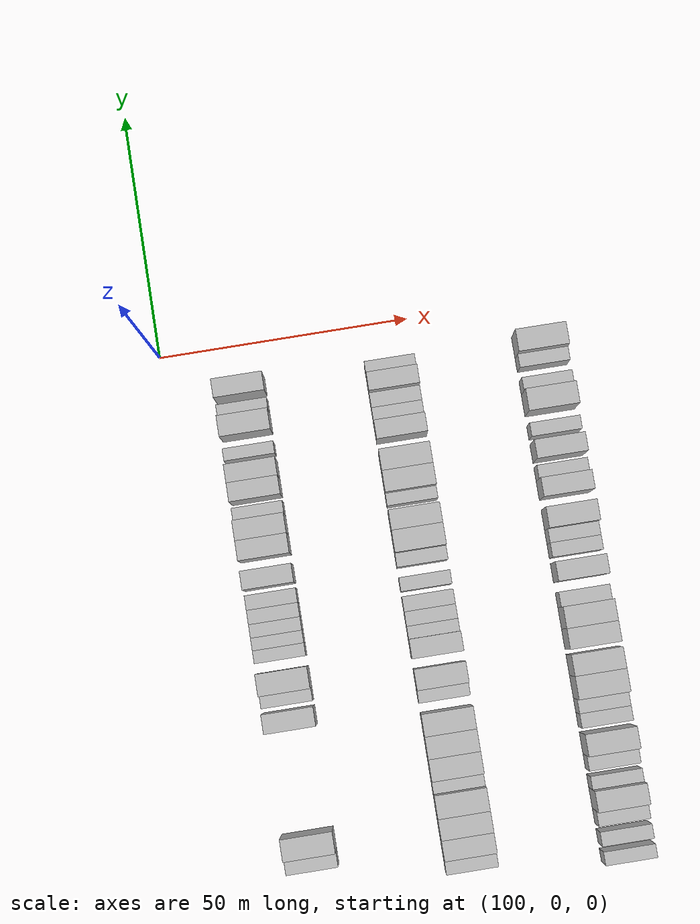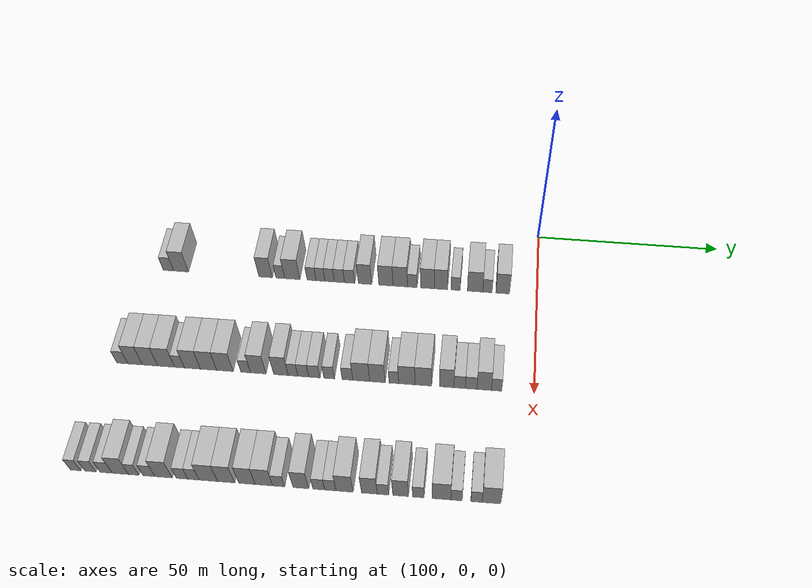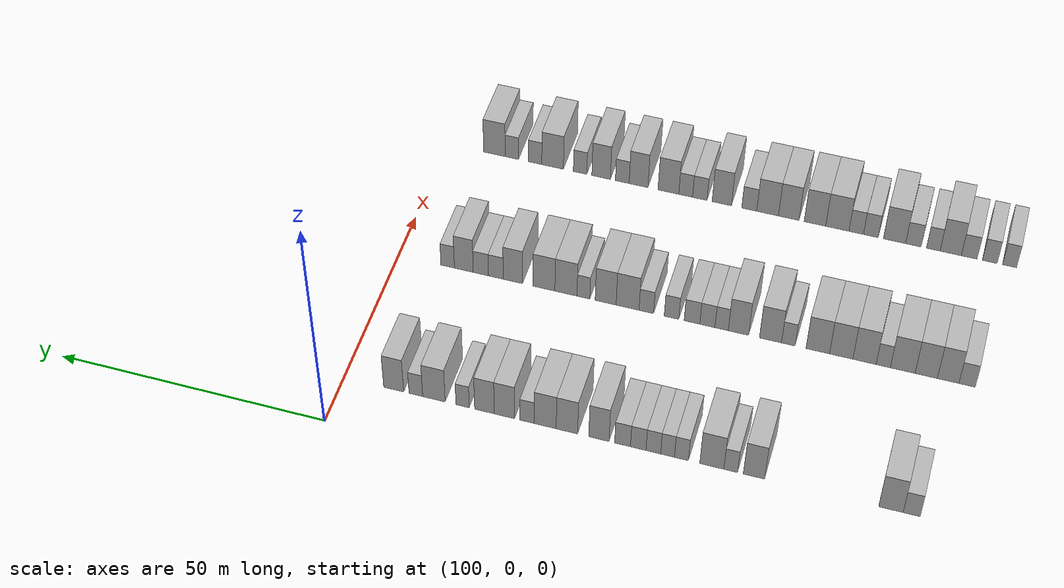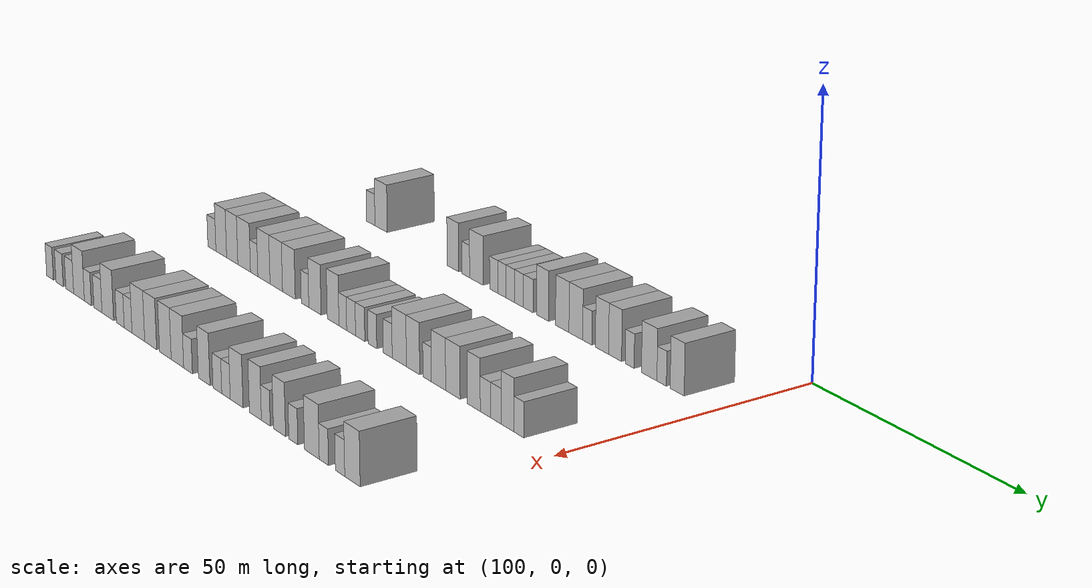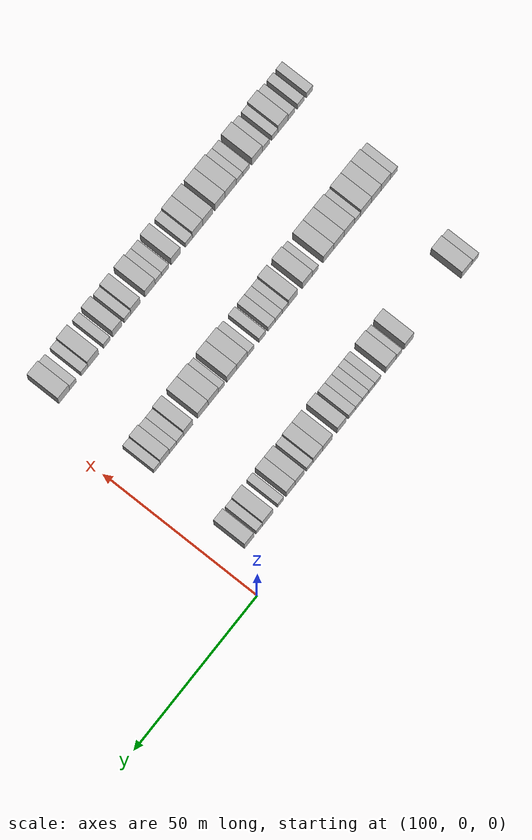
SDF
<sdf version="1.6">
 <world name="default">
  <model name="building_734">
   <static>1</static>
   <pose>115.0000 -101.7129 0 0.000000 0.000000 0.000000</pose>
   <link name="link">
    <pose>0 0 3.00 0 0 0</pose>
    <collision name="collision"><geometry><box><size>10.0000 2.8836 6.0000</size></box></geometry></collision>
    <visual name="visual">
     <cast_shadows>0</cast_shadows>
     <geometry><box><size>10.0000 2.8836 6.0000</size></box></geometry>
     <material>
      <script>
       <uri>model://HANNAS_wall/materials/scripts</uri>
       <uri>model://HANNAS_wall/materials/textures</uri>
       <name>vrc/HANNAS_wall</name>
      </script>
     </material>
    </visual>
   </link>
  </model>
  <model name="building_735">
   <static>1</static>
   <pose>115.0000 -98.1775 0 0.000000 0.000000 0.000000</pose>
   <link name="link">
    <pose>0 0 4.50 0 0 0</pose>
    <collision name="collision"><geometry><box><size>10.0000 4.1872 9.0000</size></box></geometry></collision>
    <visual name="visual">
     <cast_shadows>0</cast_shadows>
     <geometry><box><size>10.0000 4.1872 9.0000</size></box></geometry>
     <material>
      <script>
       <uri>model://HANNAS_wall/materials/scripts</uri>
       <uri>model://HANNAS_wall/materials/textures</uri>
       <name>vrc/HANNAS_wall</name>
      </script>
     </material>
    </visual>
   </link>
  </model>
  <model name="building_736">
   <static>1</static>
   <pose>115.0000 -74.4895 0 0.000000 0.000000 0.000000</pose>
   <link name="link">
    <pose>0 0 4.50 0 0 0</pose>
    <collision name="collision"><geometry><box><size>10.0000 3.7296 9.0000</size></box></geometry></collision>
    <visual name="visual">
     <cast_shadows>0</cast_shadows>
     <geometry><box><size>10.0000 3.7296 9.0000</size></box></geometry>
     <material>
      <script>
       <uri>model://HANNAS_wall/materials/scripts</uri>
       <uri>model://HANNAS_wall/materials/textures</uri>
       <name>vrc/HANNAS_wall</name>
      </script>
     </material>
    </visual>
   </link>
  </model>
  <model name="building_737">
   <static>1</static>
   <pose>115.0000 -70.4163 0 0.000000 0.000000 0.000000</pose>
   <link name="link">
    <pose>0 0 3.00 0 0 0</pose>
    <collision name="collision"><geometry><box><size>10.0000 2.4168 6.0000</size></box></geometry></collision>
    <visual name="visual">
     <cast_shadows>0</cast_shadows>
     <geometry><box><size>10.0000 2.4168 6.0000</size></box></geometry>
     <material>
      <script>
       <uri>model://HANNAS_wall/materials/scripts</uri>
       <uri>model://HANNAS_wall/materials/textures</uri>
       <name>vrc/HANNAS_wall</name>
      </script>
     </material>
    </visual>
   </link>
  </model>
  <model name="building_738">
   <static>1</static>
   <pose>115.0000 -67.0861 0 0.000000 0.000000 0.000000</pose>
   <link name="link">
    <pose>0 0 4.50 0 0 0</pose>
    <collision name="collision"><geometry><box><size>10.0000 4.2435 9.0000</size></box></geometry></collision>
    <visual name="visual">
     <cast_shadows>0</cast_shadows>
     <geometry><box><size>10.0000 4.2435 9.0000</size></box></geometry>
     <material>
      <script>
       <uri>model://HANNAS_wall/materials/scripts</uri>
       <uri>model://HANNAS_wall/materials/textures</uri>
       <name>vrc/HANNAS_wall</name>
      </script>
     </material>
    </visual>
   </link>
  </model>
  <model name="building_739">
   <static>1</static>
   <pose>115.0000 -61.7213 0 0.000000 0.000000 0.000000</pose>
   <link name="link">
    <pose>0 0 3.00 0 0 0</pose>
    <collision name="collision"><geometry><box><size>10.0000 2.4862 6.0000</size></box></geometry></collision>
    <visual name="visual">
     <cast_shadows>0</cast_shadows>
     <geometry><box><size>10.0000 2.4862 6.0000</size></box></geometry>
     <material>
      <script>
       <uri>model://HANNAS_wall/materials/scripts</uri>
       <uri>model://HANNAS_wall/materials/textures</uri>
       <name>vrc/HANNAS_wall</name>
      </script>
     </material>
    </visual>
   </link>
  </model>
  <model name="building_740">
   <static>1</static>
   <pose>115.0000 -59.2517 0 0.000000 0.000000 0.000000</pose>
   <link name="link">
    <pose>0 0 3.00 0 0 0</pose>
    <collision name="collision"><geometry><box><size>10.0000 2.4529 6.0000</size></box></geometry></collision>
    <visual name="visual">
     <cast_shadows>0</cast_shadows>
     <geometry><box><size>10.0000 2.4529 6.0000</size></box></geometry>
     <material>
      <script>
       <uri>model://HANNAS_wall/materials/scripts</uri>
       <uri>model://HANNAS_wall/materials/textures</uri>
       <name>vrc/HANNAS_wall</name>
      </script>
     </material>
    </visual>
   </link>
  </model>
  <model name="building_741">
   <static>1</static>
   <pose>115.0000 -56.7186 0 0.000000 0.000000 0.000000</pose>
   <link name="link">
    <pose>0 0 3.00 0 0 0</pose>
    <collision name="collision"><geometry><box><size>10.0000 2.6132 6.0000</size></box></geometry></collision>
    <visual name="visual">
     <cast_shadows>0</cast_shadows>
     <geometry><box><size>10.0000 2.6132 6.0000</size></box></geometry>
     <material>
      <script>
       <uri>model://HANNAS_wall/materials/scripts</uri>
       <uri>model://HANNAS_wall/materials/textures</uri>
       <name>vrc/HANNAS_wall</name>
      </script>
     </material>
    </visual>
   </link>
  </model>
  <model name="building_742">
   <static>1</static>
   <pose>115.0000 -54.0261 0 0.000000 0.000000 0.000000</pose>
   <link name="link">
    <pose>0 0 3.00 0 0 0</pose>
    <collision name="collision"><geometry><box><size>10.0000 2.7718 6.0000</size></box></geometry></collision>
    <visual name="visual">
     <cast_shadows>0</cast_shadows>
     <geometry><box><size>10.0000 2.7718 6.0000</size></box></geometry>
     <material>
      <script>
       <uri>model://HANNAS_wall/materials/scripts</uri>
       <uri>model://HANNAS_wall/materials/textures</uri>
       <name>vrc/HANNAS_wall</name>
      </script>
     </material>
    </visual>
   </link>
  </model>
  <model name="building_743">
   <static>1</static>
   <pose>115.0000 -51.2194 0 0.000000 0.000000 0.000000</pose>
   <link name="link">
    <pose>0 0 3.00 0 0 0</pose>
    <collision name="collision"><geometry><box><size>10.0000 2.8417 6.0000</size></box></geometry></collision>
    <visual name="visual">
     <cast_shadows>0</cast_shadows>
     <geometry><box><size>10.0000 2.8417 6.0000</size></box></geometry>
     <material>
      <script>
       <uri>model://HANNAS_wall/materials/scripts</uri>
       <uri>model://HANNAS_wall/materials/textures</uri>
       <name>vrc/HANNAS_wall</name>
      </script>
     </material>
    </visual>
   </link>
  </model>
  <model name="building_744">
   <static>1</static>
   <pose>115.0000 -46.9704 0 0.000000 0.000000 0.000000</pose>
   <link name="link">
    <pose>0 0 4.50 0 0 0</pose>
    <collision name="collision"><geometry><box><size>10.0000 3.6562 9.0000</size></box></geometry></collision>
    <visual name="visual">
     <cast_shadows>0</cast_shadows>
     <geometry><box><size>10.0000 3.6562 9.0000</size></box></geometry>
     <material>
      <script>
       <uri>model://HANNAS_wall/materials/scripts</uri>
       <uri>model://HANNAS_wall/materials/textures</uri>
       <name>vrc/HANNAS_wall</name>
      </script>
     </material>
    </visual>
   </link>
  </model>
  <model name="building_745">
   <static>1</static>
   <pose>115.0000 -41.1930 0 0.000000 0.000000 0.000000</pose>
   <link name="link">
    <pose>0 0 4.50 0 0 0</pose>
    <collision name="collision"><geometry><box><size>10.0000 3.8987 9.0000</size></box></geometry></collision>
    <visual name="visual">
     <cast_shadows>0</cast_shadows>
     <geometry><box><size>10.0000 3.8987 9.0000</size></box></geometry>
     <material>
      <script>
       <uri>model://HANNAS_wall/materials/scripts</uri>
       <uri>model://HANNAS_wall/materials/textures</uri>
       <name>vrc/HANNAS_wall</name>
      </script>
     </material>
    </visual>
   </link>
  </model>
  <model name="building_746">
   <static>1</static>
   <pose>115.0000 -37.2574 0 0.000000 0.000000 0.000000</pose>
   <link name="link">
    <pose>0 0 4.50 0 0 0</pose>
    <collision name="collision"><geometry><box><size>10.0000 3.9725 9.0000</size></box></geometry></collision>
    <visual name="visual">
     <cast_shadows>0</cast_shadows>
     <geometry><box><size>10.0000 3.9725 9.0000</size></box></geometry>
     <material>
      <script>
       <uri>model://HANNAS_wall/materials/scripts</uri>
       <uri>model://HANNAS_wall/materials/textures</uri>
       <name>vrc/HANNAS_wall</name>
      </script>
     </material>
    </visual>
   </link>
  </model>
  <model name="building_747">
   <static>1</static>
   <pose>115.0000 -33.9698 0 0.000000 0.000000 0.000000</pose>
   <link name="link">
    <pose>0 0 3.00 0 0 0</pose>
    <collision name="collision"><geometry><box><size>10.0000 2.6027 6.0000</size></box></geometry></collision>
    <visual name="visual">
     <cast_shadows>0</cast_shadows>
     <geometry><box><size>10.0000 2.6027 6.0000</size></box></geometry>
     <material>
      <script>
       <uri>model://HANNAS_wall/materials/scripts</uri>
       <uri>model://HANNAS_wall/materials/textures</uri>
       <name>vrc/HANNAS_wall</name>
      </script>
     </material>
    </visual>
   </link>
  </model>
  <model name="building_748">
   <static>1</static>
   <pose>115.0000 -29.8091 0 0.000000 0.000000 0.000000</pose>
   <link name="link">
    <pose>0 0 4.50 0 0 0</pose>
    <collision name="collision"><geometry><box><size>10.0000 3.7188 9.0000</size></box></geometry></collision>
    <visual name="visual">
     <cast_shadows>0</cast_shadows>
     <geometry><box><size>10.0000 3.7188 9.0000</size></box></geometry>
     <material>
      <script>
       <uri>model://HANNAS_wall/materials/scripts</uri>
       <uri>model://HANNAS_wall/materials/textures</uri>
       <name>vrc/HANNAS_wall</name>
      </script>
     </material>
    </visual>
   </link>
  </model>
  <model name="building_749">
   <static>1</static>
   <pose>115.0000 -26.1480 0 0.000000 0.000000 0.000000</pose>
   <link name="link">
    <pose>0 0 4.50 0 0 0</pose>
    <collision name="collision"><geometry><box><size>10.0000 3.6032 9.0000</size></box></geometry></collision>
    <visual name="visual">
     <cast_shadows>0</cast_shadows>
     <geometry><box><size>10.0000 3.6032 9.0000</size></box></geometry>
     <material>
      <script>
       <uri>model://HANNAS_wall/materials/scripts</uri>
       <uri>model://HANNAS_wall/materials/textures</uri>
       <name>vrc/HANNAS_wall</name>
      </script>
     </material>
    </visual>
   </link>
  </model>
  <model name="building_750">
   <static>1</static>
   <pose>115.0000 -22.1203 0 0.000000 0.000000 0.000000</pose>
   <link name="link">
    <pose>0 0 3.00 0 0 0</pose>
    <collision name="collision"><geometry><box><size>10.0000 2.4522 6.0000</size></box></geometry></collision>
    <visual name="visual">
     <cast_shadows>0</cast_shadows>
     <geometry><box><size>10.0000 2.4522 6.0000</size></box></geometry>
     <material>
      <script>
       <uri>model://HANNAS_wall/materials/scripts</uri>
       <uri>model://HANNAS_wall/materials/textures</uri>
       <name>vrc/HANNAS_wall</name>
      </script>
     </material>
    </visual>
   </link>
  </model>
  <model name="building_751">
   <static>1</static>
   <pose>115.0000 -16.8085 0 0.000000 0.000000 0.000000</pose>
   <link name="link">
    <pose>0 0 4.50 0 0 0</pose>
    <collision name="collision"><geometry><box><size>10.0000 4.1714 9.0000</size></box></geometry></collision>
    <visual name="visual">
     <cast_shadows>0</cast_shadows>
     <geometry><box><size>10.0000 4.1714 9.0000</size></box></geometry>
     <material>
      <script>
       <uri>model://HANNAS_wall/materials/scripts</uri>
       <uri>model://HANNAS_wall/materials/textures</uri>
       <name>vrc/HANNAS_wall</name>
      </script>
     </material>
    </visual>
   </link>
  </model>
  <model name="building_752">
   <static>1</static>
   <pose>115.0000 -13.4488 0 0.000000 0.000000 0.000000</pose>
   <link name="link">
    <pose>0 0 3.00 0 0 0</pose>
    <collision name="collision"><geometry><box><size>10.0000 2.5480 6.0000</size></box></geometry></collision>
    <visual name="visual">
     <cast_shadows>0</cast_shadows>
     <geometry><box><size>10.0000 2.5480 6.0000</size></box></geometry>
     <material>
      <script>
       <uri>model://HANNAS_wall/materials/scripts</uri>
       <uri>model://HANNAS_wall/materials/textures</uri>
       <name>vrc/HANNAS_wall</name>
      </script>
     </material>
    </visual>
   </link>
  </model>
  <model name="building_753">
   <static>1</static>
   <pose>115.0000 -9.3132 0 0.000000 0.000000 0.000000</pose>
   <link name="link">
    <pose>0 0 4.50 0 0 0</pose>
    <collision name="collision"><geometry><box><size>10.0000 3.7233 9.0000</size></box></geometry></collision>
    <visual name="visual">
     <cast_shadows>0</cast_shadows>
     <geometry><box><size>10.0000 3.7233 9.0000</size></box></geometry>
     <material>
      <script>
       <uri>model://HANNAS_wall/materials/scripts</uri>
       <uri>model://HANNAS_wall/materials/textures</uri>
       <name>vrc/HANNAS_wall</name>
      </script>
     </material>
    </visual>
   </link>
  </model>
  <model name="building_943">
   <static>1</static>
   <pose>145.0000 -106.3964 0 0.000000 0.000000 0.000000</pose>
   <link name="link">
    <pose>0 0 3.00 0 0 0</pose>
    <collision name="collision"><geometry><box><size>10.0000 2.9068 6.0000</size></box></geometry></collision>
    <visual name="visual">
     <cast_shadows>0</cast_shadows>
     <geometry><box><size>10.0000 2.9068 6.0000</size></box></geometry>
     <material>
      <script>
       <uri>model://HANNAS_wall/materials/scripts</uri>
       <uri>model://HANNAS_wall/materials/textures</uri>
       <name>vrc/HANNAS_wall</name>
      </script>
     </material>
    </visual>
   </link>
  </model>
  <model name="building_944">
   <static>1</static>
   <pose>145.0000 -103.0213 0 0.000000 0.000000 0.000000</pose>
   <link name="link">
    <pose>0 0 4.50 0 0 0</pose>
    <collision name="collision"><geometry><box><size>10.0000 3.8434 9.0000</size></box></geometry></collision>
    <visual name="visual">
     <cast_shadows>0</cast_shadows>
     <geometry><box><size>10.0000 3.8434 9.0000</size></box></geometry>
     <material>
      <script>
       <uri>model://HANNAS_wall/materials/scripts</uri>
       <uri>model://HANNAS_wall/materials/textures</uri>
       <name>vrc/HANNAS_wall</name>
      </script>
     </material>
    </visual>
   </link>
  </model>
  <model name="building_945">
   <static>1</static>
   <pose>145.0000 -99.0991 0 0.000000 0.000000 0.000000</pose>
   <link name="link">
    <pose>0 0 4.50 0 0 0</pose>
    <collision name="collision"><geometry><box><size>10.0000 4.0010 9.0000</size></box></geometry></collision>
    <visual name="visual">
     <cast_shadows>0</cast_shadows>
     <geometry><box><size>10.0000 4.0010 9.0000</size></box></geometry>
     <material>
      <script>
       <uri>model://HANNAS_wall/materials/scripts</uri>
       <uri>model://HANNAS_wall/materials/textures</uri>
       <name>vrc/HANNAS_wall</name>
      </script>
     </material>
    </visual>
   </link>
  </model>
  <model name="building_946">
   <static>1</static>
   <pose>145.0000 -94.8778 0 0.000000 0.000000 0.000000</pose>
   <link name="link">
    <pose>0 0 4.50 0 0 0</pose>
    <collision name="collision"><geometry><box><size>10.0000 4.4416 9.0000</size></box></geometry></collision>
    <visual name="visual">
     <cast_shadows>0</cast_shadows>
     <geometry><box><size>10.0000 4.4416 9.0000</size></box></geometry>
     <material>
      <script>
       <uri>model://HANNAS_wall/materials/scripts</uri>
       <uri>model://HANNAS_wall/materials/textures</uri>
       <name>vrc/HANNAS_wall</name>
      </script>
     </material>
    </visual>
   </link>
  </model>
  <model name="building_947">
   <static>1</static>
   <pose>145.0000 -91.3751 0 0.000000 0.000000 0.000000</pose>
   <link name="link">
    <pose>0 0 3.00 0 0 0</pose>
    <collision name="collision"><geometry><box><size>10.0000 2.5639 6.0000</size></box></geometry></collision>
    <visual name="visual">
     <cast_shadows>0</cast_shadows>
     <geometry><box><size>10.0000 2.5639 6.0000</size></box></geometry>
     <material>
      <script>
       <uri>model://HANNAS_wall/materials/scripts</uri>
       <uri>model://HANNAS_wall/materials/textures</uri>
       <name>vrc/HANNAS_wall</name>
      </script>
     </material>
    </visual>
   </link>
  </model>
  <model name="building_948">
   <static>1</static>
   <pose>145.0000 -87.9874 0 0.000000 0.000000 0.000000</pose>
   <link name="link">
    <pose>0 0 4.50 0 0 0</pose>
    <collision name="collision"><geometry><box><size>10.0000 4.2115 9.0000</size></box></geometry></collision>
    <visual name="visual">
     <cast_shadows>0</cast_shadows>
     <geometry><box><size>10.0000 4.2115 9.0000</size></box></geometry>
     <material>
      <script>
       <uri>model://HANNAS_wall/materials/scripts</uri>
       <uri>model://HANNAS_wall/materials/textures</uri>
       <name>vrc/HANNAS_wall</name>
      </script>
     </material>
    </visual>
   </link>
  </model>
  <model name="building_949">
   <static>1</static>
   <pose>145.0000 -83.7532 0 0.000000 0.000000 0.000000</pose>
   <link name="link">
    <pose>0 0 4.50 0 0 0</pose>
    <collision name="collision"><geometry><box><size>10.0000 4.2570 9.0000</size></box></geometry></collision>
    <visual name="visual">
     <cast_shadows>0</cast_shadows>
     <geometry><box><size>10.0000 4.2570 9.0000</size></box></geometry>
     <material>
      <script>
       <uri>model://HANNAS_wall/materials/scripts</uri>
       <uri>model://HANNAS_wall/materials/textures</uri>
       <name>vrc/HANNAS_wall</name>
      </script>
     </material>
    </visual>
   </link>
  </model>
  <model name="building_950">
   <static>1</static>
   <pose>145.0000 -79.4793 0 0.000000 0.000000 0.000000</pose>
   <link name="link">
    <pose>0 0 4.50 0 0 0</pose>
    <collision name="collision"><geometry><box><size>10.0000 4.2907 9.0000</size></box></geometry></collision>
    <visual name="visual">
     <cast_shadows>0</cast_shadows>
     <geometry><box><size>10.0000 4.2907 9.0000</size></box></geometry>
     <material>
      <script>
       <uri>model://HANNAS_wall/materials/scripts</uri>
       <uri>model://HANNAS_wall/materials/textures</uri>
       <name>vrc/HANNAS_wall</name>
      </script>
     </material>
    </visual>
   </link>
  </model>
  <model name="building_951">
   <static>1</static>
   <pose>145.0000 -74.0862 0 0.000000 0.000000 0.000000</pose>
   <link name="link">
    <pose>0 0 3.00 0 0 0</pose>
    <collision name="collision"><geometry><box><size>10.0000 2.4956 6.0000</size></box></geometry></collision>
    <visual name="visual">
     <cast_shadows>0</cast_shadows>
     <geometry><box><size>10.0000 2.4956 6.0000</size></box></geometry>
     <material>
      <script>
       <uri>model://HANNAS_wall/materials/scripts</uri>
       <uri>model://HANNAS_wall/materials/textures</uri>
       <name>vrc/HANNAS_wall</name>
      </script>
     </material>
    </visual>
   </link>
  </model>
  <model name="building_952">
   <static>1</static>
   <pose>145.0000 -70.8057 0 0.000000 0.000000 0.000000</pose>
   <link name="link">
    <pose>0 0 4.50 0 0 0</pose>
    <collision name="collision"><geometry><box><size>10.0000 4.0654 9.0000</size></box></geometry></collision>
    <visual name="visual">
     <cast_shadows>0</cast_shadows>
     <geometry><box><size>10.0000 4.0654 9.0000</size></box></geometry>
     <material>
      <script>
       <uri>model://HANNAS_wall/materials/scripts</uri>
       <uri>model://HANNAS_wall/materials/textures</uri>
       <name>vrc/HANNAS_wall</name>
      </script>
     </material>
    </visual>
   </link>
  </model>
  <model name="building_953">
   <static>1</static>
   <pose>145.0000 -64.8870 0 0.000000 0.000000 0.000000</pose>
   <link name="link">
    <pose>0 0 4.50 0 0 0</pose>
    <collision name="collision"><geometry><box><size>10.0000 3.7720 9.0000</size></box></geometry></collision>
    <visual name="visual">
     <cast_shadows>0</cast_shadows>
     <geometry><box><size>10.0000 3.7720 9.0000</size></box></geometry>
     <material>
      <script>
       <uri>model://HANNAS_wall/materials/scripts</uri>
       <uri>model://HANNAS_wall/materials/textures</uri>
       <name>vrc/HANNAS_wall</name>
      </script>
     </material>
    </visual>
   </link>
  </model>
  <model name="building_954">
   <static>1</static>
   <pose>145.0000 -61.7657 0 0.000000 0.000000 0.000000</pose>
   <link name="link">
    <pose>0 0 3.00 0 0 0</pose>
    <collision name="collision"><geometry><box><size>10.0000 2.4706 6.0000</size></box></geometry></collision>
    <visual name="visual">
     <cast_shadows>0</cast_shadows>
     <geometry><box><size>10.0000 2.4706 6.0000</size></box></geometry>
     <material>
      <script>
       <uri>model://HANNAS_wall/materials/scripts</uri>
       <uri>model://HANNAS_wall/materials/textures</uri>
       <name>vrc/HANNAS_wall</name>
      </script>
     </material>
    </visual>
   </link>
  </model>
  <model name="building_955">
   <static>1</static>
   <pose>145.0000 -59.1173 0 0.000000 0.000000 0.000000</pose>
   <link name="link">
    <pose>0 0 3.00 0 0 0</pose>
    <collision name="collision"><geometry><box><size>10.0000 2.8263 6.0000</size></box></geometry></collision>
    <visual name="visual">
     <cast_shadows>0</cast_shadows>
     <geometry><box><size>10.0000 2.8263 6.0000</size></box></geometry>
     <material>
      <script>
       <uri>model://HANNAS_wall/materials/scripts</uri>
       <uri>model://HANNAS_wall/materials/textures</uri>
       <name>vrc/HANNAS_wall</name>
      </script>
     </material>
    </visual>
   </link>
  </model>
  <model name="building_956">
   <static>1</static>
   <pose>145.0000 -56.2419 0 0.000000 0.000000 0.000000</pose>
   <link name="link">
    <pose>0 0 3.00 0 0 0</pose>
    <collision name="collision"><geometry><box><size>10.0000 2.9244 6.0000</size></box></geometry></collision>
    <visual name="visual">
     <cast_shadows>0</cast_shadows>
     <geometry><box><size>10.0000 2.9244 6.0000</size></box></geometry>
     <material>
      <script>
       <uri>model://HANNAS_wall/materials/scripts</uri>
       <uri>model://HANNAS_wall/materials/textures</uri>
       <name>vrc/HANNAS_wall</name>
      </script>
     </material>
    </visual>
   </link>
  </model>
  <model name="building_957">
   <static>1</static>
   <pose>145.0000 -52.4153 0 0.000000 0.000000 0.000000</pose>
   <link name="link">
    <pose>0 0 3.00 0 0 0</pose>
    <collision name="collision"><geometry><box><size>10.0000 2.7288 6.0000</size></box></geometry></collision>
    <visual name="visual">
     <cast_shadows>0</cast_shadows>
     <geometry><box><size>10.0000 2.7288 6.0000</size></box></geometry>
     <material>
      <script>
       <uri>model://HANNAS_wall/materials/scripts</uri>
       <uri>model://HANNAS_wall/materials/textures</uri>
       <name>vrc/HANNAS_wall</name>
      </script>
     </material>
    </visual>
   </link>
  </model>
  <model name="building_958">
   <static>1</static>
   <pose>145.0000 -47.6742 0 0.000000 0.000000 0.000000</pose>
   <link name="link">
    <pose>0 0 3.00 0 0 0</pose>
    <collision name="collision"><geometry><box><size>10.0000 2.7535 6.0000</size></box></geometry></collision>
    <visual name="visual">
     <cast_shadows>0</cast_shadows>
     <geometry><box><size>10.0000 2.7535 6.0000</size></box></geometry>
     <material>
      <script>
       <uri>model://HANNAS_wall/materials/scripts</uri>
       <uri>model://HANNAS_wall/materials/textures</uri>
       <name>vrc/HANNAS_wall</name>
      </script>
     </material>
    </visual>
   </link>
  </model>
  <model name="building_959">
   <static>1</static>
   <pose>145.0000 -44.1345 0 0.000000 0.000000 0.000000</pose>
   <link name="link">
    <pose>0 0 4.50 0 0 0</pose>
    <collision name="collision"><geometry><box><size>10.0000 4.3260 9.0000</size></box></geometry></collision>
    <visual name="visual">
     <cast_shadows>0</cast_shadows>
     <geometry><box><size>10.0000 4.3260 9.0000</size></box></geometry>
     <material>
      <script>
       <uri>model://HANNAS_wall/materials/scripts</uri>
       <uri>model://HANNAS_wall/materials/textures</uri>
       <name>vrc/HANNAS_wall</name>
      </script>
     </material>
    </visual>
   </link>
  </model>
  <model name="building_960">
   <static>1</static>
   <pose>145.0000 -39.9792 0 0.000000 0.000000 0.000000</pose>
   <link name="link">
    <pose>0 0 4.50 0 0 0</pose>
    <collision name="collision"><geometry><box><size>10.0000 3.9847 9.0000</size></box></geometry></collision>
    <visual name="visual">
     <cast_shadows>0</cast_shadows>
     <geometry><box><size>10.0000 3.9847 9.0000</size></box></geometry>
     <material>
      <script>
       <uri>model://HANNAS_wall/materials/scripts</uri>
       <uri>model://HANNAS_wall/materials/textures</uri>
       <name>vrc/HANNAS_wall</name>
      </script>
     </material>
    </visual>
   </link>
  </model>
  <model name="building_961">
   <static>1</static>
   <pose>145.0000 -35.7573 0 0.000000 0.000000 0.000000</pose>
   <link name="link">
    <pose>0 0 3.00 0 0 0</pose>
    <collision name="collision"><geometry><box><size>10.0000 2.4591 6.0000</size></box></geometry></collision>
    <visual name="visual">
     <cast_shadows>0</cast_shadows>
     <geometry><box><size>10.0000 2.4591 6.0000</size></box></geometry>
     <material>
      <script>
       <uri>model://HANNAS_wall/materials/scripts</uri>
       <uri>model://HANNAS_wall/materials/textures</uri>
       <name>vrc/HANNAS_wall</name>
      </script>
     </material>
    </visual>
   </link>
  </model>
  <model name="building_962">
   <static>1</static>
   <pose>145.0000 -32.4200 0 0.000000 0.000000 0.000000</pose>
   <link name="link">
    <pose>0 0 4.50 0 0 0</pose>
    <collision name="collision"><geometry><box><size>10.0000 4.2155 9.0000</size></box></geometry></collision>
    <visual name="visual">
     <cast_shadows>0</cast_shadows>
     <geometry><box><size>10.0000 4.2155 9.0000</size></box></geometry>
     <material>
      <script>
       <uri>model://HANNAS_wall/materials/scripts</uri>
       <uri>model://HANNAS_wall/materials/textures</uri>
       <name>vrc/HANNAS_wall</name>
      </script>
     </material>
    </visual>
   </link>
  </model>
  <model name="building_963">
   <static>1</static>
   <pose>145.0000 -28.2060 0 0.000000 0.000000 0.000000</pose>
   <link name="link">
    <pose>0 0 4.50 0 0 0</pose>
    <collision name="collision"><geometry><box><size>10.0000 4.2125 9.0000</size></box></geometry></collision>
    <visual name="visual">
     <cast_shadows>0</cast_shadows>
     <geometry><box><size>10.0000 4.2125 9.0000</size></box></geometry>
     <material>
      <script>
       <uri>model://HANNAS_wall/materials/scripts</uri>
       <uri>model://HANNAS_wall/materials/textures</uri>
       <name>vrc/HANNAS_wall</name>
      </script>
     </material>
    </visual>
   </link>
  </model>
  <model name="building_964">
   <static>1</static>
   <pose>145.0000 -22.2326 0 0.000000 0.000000 0.000000</pose>
   <link name="link">
    <pose>0 0 4.50 0 0 0</pose>
    <collision name="collision"><geometry><box><size>10.0000 3.7343 9.0000</size></box></geometry></collision>
    <visual name="visual">
     <cast_shadows>0</cast_shadows>
     <geometry><box><size>10.0000 3.7343 9.0000</size></box></geometry>
     <material>
      <script>
       <uri>model://HANNAS_wall/materials/scripts</uri>
       <uri>model://HANNAS_wall/materials/textures</uri>
       <name>vrc/HANNAS_wall</name>
      </script>
     </material>
    </visual>
   </link>
  </model>
  <model name="building_965">
   <static>1</static>
   <pose>145.0000 -18.9314 0 0.000000 0.000000 0.000000</pose>
   <link name="link">
    <pose>0 0 3.00 0 0 0</pose>
    <collision name="collision"><geometry><box><size>10.0000 2.8681 6.0000</size></box></geometry></collision>
    <visual name="visual">
     <cast_shadows>0</cast_shadows>
     <geometry><box><size>10.0000 2.8681 6.0000</size></box></geometry>
     <material>
      <script>
       <uri>model://HANNAS_wall/materials/scripts</uri>
       <uri>model://HANNAS_wall/materials/textures</uri>
       <name>vrc/HANNAS_wall</name>
      </script>
     </material>
    </visual>
   </link>
  </model>
  <model name="building_966">
   <static>1</static>
   <pose>145.0000 -16.0173 0 0.000000 0.000000 0.000000</pose>
   <link name="link">
    <pose>0 0 3.00 0 0 0</pose>
    <collision name="collision"><geometry><box><size>10.0000 2.9600 6.0000</size></box></geometry></collision>
    <visual name="visual">
     <cast_shadows>0</cast_shadows>
     <geometry><box><size>10.0000 2.9600 6.0000</size></box></geometry>
     <material>
      <script>
       <uri>model://HANNAS_wall/materials/scripts</uri>
       <uri>model://HANNAS_wall/materials/textures</uri>
       <name>vrc/HANNAS_wall</name>
      </script>
     </material>
    </visual>
   </link>
  </model>
  <model name="building_967">
   <static>1</static>
   <pose>145.0000 -12.7052 0 0.000000 0.000000 0.000000</pose>
   <link name="link">
    <pose>0 0 4.50 0 0 0</pose>
    <collision name="collision"><geometry><box><size>10.0000 3.6642 9.0000</size></box></geometry></collision>
    <visual name="visual">
     <cast_shadows>0</cast_shadows>
     <geometry><box><size>10.0000 3.6642 9.0000</size></box></geometry>
     <material>
      <script>
       <uri>model://HANNAS_wall/materials/scripts</uri>
       <uri>model://HANNAS_wall/materials/textures</uri>
       <name>vrc/HANNAS_wall</name>
      </script>
     </material>
    </visual>
   </link>
  </model>
  <model name="building_968">
   <static>1</static>
   <pose>145.0000 -9.5540 0 0.000000 0.000000 0.000000</pose>
   <link name="link">
    <pose>0 0 3.00 0 0 0</pose>
    <collision name="collision"><geometry><box><size>10.0000 2.6382 6.0000</size></box></geometry></collision>
    <visual name="visual">
     <cast_shadows>0</cast_shadows>
     <geometry><box><size>10.0000 2.6382 6.0000</size></box></geometry>
     <material>
      <script>
       <uri>model://HANNAS_wall/materials/scripts</uri>
       <uri>model://HANNAS_wall/materials/textures</uri>
       <name>vrc/HANNAS_wall</name>
      </script>
     </material>
    </visual>
   </link>
  </model>
  <model name="building_1167">
   <static>1</static>
   <pose>175.0000 -109.6147 0 0.000000 0.000000 0.000000</pose>
   <link name="link">
    <pose>0 0 3.00 0 0 0</pose>
    <collision name="collision"><geometry><box><size>10.0000 2.5950 6.0000</size></box></geometry></collision>
    <visual name="visual">
     <cast_shadows>0</cast_shadows>
     <geometry><box><size>10.0000 2.5950 6.0000</size></box></geometry>
     <material>
      <script>
       <uri>model://HANNAS_wall/materials/scripts</uri>
       <uri>model://HANNAS_wall/materials/textures</uri>
       <name>vrc/HANNAS_wall</name>
      </script>
     </material>
    </visual>
   </link>
  </model>
  <model name="building_1168">
   <static>1</static>
   <pose>175.0000 -105.9452 0 0.000000 0.000000 0.000000</pose>
   <link name="link">
    <pose>0 0 3.00 0 0 0</pose>
    <collision name="collision"><geometry><box><size>10.0000 2.7439 6.0000</size></box></geometry></collision>
    <visual name="visual">
     <cast_shadows>0</cast_shadows>
     <geometry><box><size>10.0000 2.7439 6.0000</size></box></geometry>
     <material>
      <script>
       <uri>model://HANNAS_wall/materials/scripts</uri>
       <uri>model://HANNAS_wall/materials/textures</uri>
       <name>vrc/HANNAS_wall</name>
      </script>
     </material>
    </visual>
   </link>
  </model>
  <model name="building_1169">
   <static>1</static>
   <pose>175.0000 -102.0971 0 0.000000 0.000000 0.000000</pose>
   <link name="link">
    <pose>0 0 3.00 0 0 0</pose>
    <collision name="collision"><geometry><box><size>10.0000 2.9522 6.0000</size></box></geometry></collision>
    <visual name="visual">
     <cast_shadows>0</cast_shadows>
     <geometry><box><size>10.0000 2.9522 6.0000</size></box></geometry>
     <material>
      <script>
       <uri>model://HANNAS_wall/materials/scripts</uri>
       <uri>model://HANNAS_wall/materials/textures</uri>
       <name>vrc/HANNAS_wall</name>
      </script>
     </material>
    </visual>
   </link>
  </model>
  <model name="building_1170">
   <static>1</static>
   <pose>175.0000 -98.6172 0 0.000000 0.000000 0.000000</pose>
   <link name="link">
    <pose>0 0 4.50 0 0 0</pose>
    <collision name="collision"><geometry><box><size>10.0000 4.0077 9.0000</size></box></geometry></collision>
    <visual name="visual">
     <cast_shadows>0</cast_shadows>
     <geometry><box><size>10.0000 4.0077 9.0000</size></box></geometry>
     <material>
      <script>
       <uri>model://HANNAS_wall/materials/scripts</uri>
       <uri>model://HANNAS_wall/materials/textures</uri>
       <name>vrc/HANNAS_wall</name>
      </script>
     </material>
    </visual>
   </link>
  </model>
  <model name="building_1171">
   <static>1</static>
   <pose>175.0000 -95.3393 0 0.000000 0.000000 0.000000</pose>
   <link name="link">
    <pose>0 0 3.00 0 0 0</pose>
    <collision name="collision"><geometry><box><size>10.0000 2.5482 6.0000</size></box></geometry></collision>
    <visual name="visual">
     <cast_shadows>0</cast_shadows>
     <geometry><box><size>10.0000 2.5482 6.0000</size></box></geometry>
     <material>
      <script>
       <uri>model://HANNAS_wall/materials/scripts</uri>
       <uri>model://HANNAS_wall/materials/textures</uri>
       <name>vrc/HANNAS_wall</name>
      </script>
     </material>
    </visual>
   </link>
  </model>
  <model name="building_1172">
   <static>1</static>
   <pose>175.0000 -91.6011 0 0.000000 0.000000 0.000000</pose>
   <link name="link">
    <pose>0 0 3.00 0 0 0</pose>
    <collision name="collision"><geometry><box><size>10.0000 2.9281 6.0000</size></box></geometry></collision>
    <visual name="visual">
     <cast_shadows>0</cast_shadows>
     <geometry><box><size>10.0000 2.9281 6.0000</size></box></geometry>
     <material>
      <script>
       <uri>model://HANNAS_wall/materials/scripts</uri>
       <uri>model://HANNAS_wall/materials/textures</uri>
       <name>vrc/HANNAS_wall</name>
      </script>
     </material>
    </visual>
   </link>
  </model>
  <model name="building_1173">
   <static>1</static>
   <pose>175.0000 -88.0285 0 0.000000 0.000000 0.000000</pose>
   <link name="link">
    <pose>0 0 4.50 0 0 0</pose>
    <collision name="collision"><geometry><box><size>10.0000 4.2172 9.0000</size></box></geometry></collision>
    <visual name="visual">
     <cast_shadows>0</cast_shadows>
     <geometry><box><size>10.0000 4.2172 9.0000</size></box></geometry>
     <material>
      <script>
       <uri>model://HANNAS_wall/materials/scripts</uri>
       <uri>model://HANNAS_wall/materials/textures</uri>
       <name>vrc/HANNAS_wall</name>
      </script>
     </material>
    </visual>
   </link>
  </model>
  <model name="building_1174">
   <static>1</static>
   <pose>175.0000 -83.5247 0 0.000000 0.000000 0.000000</pose>
   <link name="link">
    <pose>0 0 3.00 0 0 0</pose>
    <collision name="collision"><geometry><box><size>10.0000 2.7904 6.0000</size></box></geometry></collision>
    <visual name="visual">
     <cast_shadows>0</cast_shadows>
     <geometry><box><size>10.0000 2.7904 6.0000</size></box></geometry>
     <material>
      <script>
       <uri>model://HANNAS_wall/materials/scripts</uri>
       <uri>model://HANNAS_wall/materials/textures</uri>
       <name>vrc/HANNAS_wall</name>
      </script>
     </material>
    </visual>
   </link>
  </model>
  <model name="building_1175">
   <static>1</static>
   <pose>175.0000 -80.7424 0 0.000000 0.000000 0.000000</pose>
   <link name="link">
    <pose>0 0 3.00 0 0 0</pose>
    <collision name="collision"><geometry><box><size>10.0000 2.7741 6.0000</size></box></geometry></collision>
    <visual name="visual">
     <cast_shadows>0</cast_shadows>
     <geometry><box><size>10.0000 2.7741 6.0000</size></box></geometry>
     <material>
      <script>
       <uri>model://HANNAS_wall/materials/scripts</uri>
       <uri>model://HANNAS_wall/materials/textures</uri>
       <name>vrc/HANNAS_wall</name>
      </script>
     </material>
    </visual>
   </link>
  </model>
  <model name="building_1176">
   <static>1</static>
   <pose>175.0000 -77.1308 0 0.000000 0.000000 0.000000</pose>
   <link name="link">
    <pose>0 0 4.50 0 0 0</pose>
    <collision name="collision"><geometry><box><size>10.0000 4.4492 9.0000</size></box></geometry></collision>
    <visual name="visual">
     <cast_shadows>0</cast_shadows>
     <geometry><box><size>10.0000 4.4492 9.0000</size></box></geometry>
     <material>
      <script>
       <uri>model://HANNAS_wall/materials/scripts</uri>
       <uri>model://HANNAS_wall/materials/textures</uri>
       <name>vrc/HANNAS_wall</name>
      </script>
     </material>
    </visual>
   </link>
  </model>
  <model name="building_1177">
   <static>1</static>
   <pose>175.0000 -72.8301 0 0.000000 0.000000 0.000000</pose>
   <link name="link">
    <pose>0 0 4.50 0 0 0</pose>
    <collision name="collision"><geometry><box><size>10.0000 4.1523 9.0000</size></box></geometry></collision>
    <visual name="visual">
     <cast_shadows>0</cast_shadows>
     <geometry><box><size>10.0000 4.1523 9.0000</size></box></geometry>
     <material>
      <script>
       <uri>model://HANNAS_wall/materials/scripts</uri>
       <uri>model://HANNAS_wall/materials/textures</uri>
       <name>vrc/HANNAS_wall</name>
      </script>
     </material>
    </visual>
   </link>
  </model>
  <model name="building_1178">
   <static>1</static>
   <pose>175.0000 -67.7642 0 0.000000 0.000000 0.000000</pose>
   <link name="link">
    <pose>0 0 4.50 0 0 0</pose>
    <collision name="collision"><geometry><box><size>10.0000 3.9794 9.0000</size></box></geometry></collision>
    <visual name="visual">
     <cast_shadows>0</cast_shadows>
     <geometry><box><size>10.0000 3.9794 9.0000</size></box></geometry>
     <material>
      <script>
       <uri>model://HANNAS_wall/materials/scripts</uri>
       <uri>model://HANNAS_wall/materials/textures</uri>
       <name>vrc/HANNAS_wall</name>
      </script>
     </material>
    </visual>
   </link>
  </model>
  <model name="building_1179">
   <static>1</static>
   <pose>175.0000 -63.6714 0 0.000000 0.000000 0.000000</pose>
   <link name="link">
    <pose>0 0 4.50 0 0 0</pose>
    <collision name="collision"><geometry><box><size>10.0000 4.2063 9.0000</size></box></geometry></collision>
    <visual name="visual">
     <cast_shadows>0</cast_shadows>
     <geometry><box><size>10.0000 4.2063 9.0000</size></box></geometry>
     <material>
      <script>
       <uri>model://HANNAS_wall/materials/scripts</uri>
       <uri>model://HANNAS_wall/materials/textures</uri>
       <name>vrc/HANNAS_wall</name>
      </script>
     </material>
    </visual>
   </link>
  </model>
  <model name="building_1180">
   <static>1</static>
   <pose>175.0000 -60.1094 0 0.000000 0.000000 0.000000</pose>
   <link name="link">
    <pose>0 0 3.00 0 0 0</pose>
    <collision name="collision"><geometry><box><size>10.0000 2.9177 6.0000</size></box></geometry></collision>
    <visual name="visual">
     <cast_shadows>0</cast_shadows>
     <geometry><box><size>10.0000 2.9177 6.0000</size></box></geometry>
     <material>
      <script>
       <uri>model://HANNAS_wall/materials/scripts</uri>
       <uri>model://HANNAS_wall/materials/textures</uri>
       <name>vrc/HANNAS_wall</name>
      </script>
     </material>
    </visual>
   </link>
  </model>
  <model name="building_1181">
   <static>1</static>
   <pose>175.0000 -54.7557 0 0.000000 0.000000 0.000000</pose>
   <link name="link">
    <pose>0 0 4.50 0 0 0</pose>
    <collision name="collision"><geometry><box><size>10.0000 3.7897 9.0000</size></box></geometry></collision>
    <visual name="visual">
     <cast_shadows>0</cast_shadows>
     <geometry><box><size>10.0000 3.7897 9.0000</size></box></geometry>
     <material>
      <script>
       <uri>model://HANNAS_wall/materials/scripts</uri>
       <uri>model://HANNAS_wall/materials/textures</uri>
       <name>vrc/HANNAS_wall</name>
      </script>
     </material>
    </visual>
   </link>
  </model>
  <model name="building_1182">
   <static>1</static>
   <pose>175.0000 -50.4396 0 0.000000 0.000000 0.000000</pose>
   <link name="link">
    <pose>0 0 3.00 0 0 0</pose>
    <collision name="collision"><geometry><box><size>10.0000 2.8425 6.0000</size></box></geometry></collision>
    <visual name="visual">
     <cast_shadows>0</cast_shadows>
     <geometry><box><size>10.0000 2.8425 6.0000</size></box></geometry>
     <material>
      <script>
       <uri>model://HANNAS_wall/materials/scripts</uri>
       <uri>model://HANNAS_wall/materials/textures</uri>
       <name>vrc/HANNAS_wall</name>
      </script>
     </material>
    </visual>
   </link>
  </model>
  <model name="building_1183">
   <static>1</static>
   <pose>175.0000 -47.6610 0 0.000000 0.000000 0.000000</pose>
   <link name="link">
    <pose>0 0 3.00 0 0 0</pose>
    <collision name="collision"><geometry><box><size>10.0000 2.7148 6.0000</size></box></geometry></collision>
    <visual name="visual">
     <cast_shadows>0</cast_shadows>
     <geometry><box><size>10.0000 2.7148 6.0000</size></box></geometry>
     <material>
      <script>
       <uri>model://HANNAS_wall/materials/scripts</uri>
       <uri>model://HANNAS_wall/materials/textures</uri>
       <name>vrc/HANNAS_wall</name>
      </script>
     </material>
    </visual>
   </link>
  </model>
  <model name="building_1184">
   <static>1</static>
   <pose>175.0000 -44.2553 0 0.000000 0.000000 0.000000</pose>
   <link name="link">
    <pose>0 0 4.50 0 0 0</pose>
    <collision name="collision"><geometry><box><size>10.0000 4.0965 9.0000</size></box></geometry></collision>
    <visual name="visual">
     <cast_shadows>0</cast_shadows>
     <geometry><box><size>10.0000 4.0965 9.0000</size></box></geometry>
     <material>
      <script>
       <uri>model://HANNAS_wall/materials/scripts</uri>
       <uri>model://HANNAS_wall/materials/textures</uri>
       <name>vrc/HANNAS_wall</name>
      </script>
     </material>
    </visual>
   </link>
  </model>
  <model name="building_1185">
   <static>1</static>
   <pose>175.0000 -38.3336 0 0.000000 0.000000 0.000000</pose>
   <link name="link">
    <pose>0 0 4.50 0 0 0</pose>
    <collision name="collision"><geometry><box><size>10.0000 3.7469 9.0000</size></box></geometry></collision>
    <visual name="visual">
     <cast_shadows>0</cast_shadows>
     <geometry><box><size>10.0000 3.7469 9.0000</size></box></geometry>
     <material>
      <script>
       <uri>model://HANNAS_wall/materials/scripts</uri>
       <uri>model://HANNAS_wall/materials/textures</uri>
       <name>vrc/HANNAS_wall</name>
      </script>
     </material>
    </visual>
   </link>
  </model>
  <model name="building_1186">
   <static>1</static>
   <pose>175.0000 -35.0969 0 0.000000 0.000000 0.000000</pose>
   <link name="link">
    <pose>0 0 3.00 0 0 0</pose>
    <collision name="collision"><geometry><box><size>10.0000 2.7266 6.0000</size></box></geometry></collision>
    <visual name="visual">
     <cast_shadows>0</cast_shadows>
     <geometry><box><size>10.0000 2.7266 6.0000</size></box></geometry>
     <material>
      <script>
       <uri>model://HANNAS_wall/materials/scripts</uri>
       <uri>model://HANNAS_wall/materials/textures</uri>
       <name>vrc/HANNAS_wall</name>
      </script>
     </material>
    </visual>
   </link>
  </model>
  <model name="building_1187">
   <static>1</static>
   <pose>175.0000 -30.8789 0 0.000000 0.000000 0.000000</pose>
   <link name="link">
    <pose>0 0 4.50 0 0 0</pose>
    <collision name="collision"><geometry><box><size>10.0000 3.7093 9.0000</size></box></geometry></collision>
    <visual name="visual">
     <cast_shadows>0</cast_shadows>
     <geometry><box><size>10.0000 3.7093 9.0000</size></box></geometry>
     <material>
      <script>
       <uri>model://HANNAS_wall/materials/scripts</uri>
       <uri>model://HANNAS_wall/materials/textures</uri>
       <name>vrc/HANNAS_wall</name>
      </script>
     </material>
    </visual>
   </link>
  </model>
  <model name="building_1188">
   <static>1</static>
   <pose>175.0000 -26.6706 0 0.000000 0.000000 0.000000</pose>
   <link name="link">
    <pose>0 0 3.00 0 0 0</pose>
    <collision name="collision"><geometry><box><size>10.0000 2.7074 6.0000</size></box></geometry></collision>
    <visual name="visual">
     <cast_shadows>0</cast_shadows>
     <geometry><box><size>10.0000 2.7074 6.0000</size></box></geometry>
     <material>
      <script>
       <uri>model://HANNAS_wall/materials/scripts</uri>
       <uri>model://HANNAS_wall/materials/textures</uri>
       <name>vrc/HANNAS_wall</name>
      </script>
     </material>
    </visual>
   </link>
  </model>
  <model name="building_1189">
   <static>1</static>
   <pose>175.0000 -21.1318 0 0.000000 0.000000 0.000000</pose>
   <link name="link">
    <pose>0 0 4.50 0 0 0</pose>
    <collision name="collision"><geometry><box><size>10.0000 4.3702 9.0000</size></box></geometry></collision>
    <visual name="visual">
     <cast_shadows>0</cast_shadows>
     <geometry><box><size>10.0000 4.3702 9.0000</size></box></geometry>
     <material>
      <script>
       <uri>model://HANNAS_wall/materials/scripts</uri>
       <uri>model://HANNAS_wall/materials/textures</uri>
       <name>vrc/HANNAS_wall</name>
      </script>
     </material>
    </visual>
   </link>
  </model>
  <model name="building_1190">
   <static>1</static>
   <pose>175.0000 -17.5941 0 0.000000 0.000000 0.000000</pose>
   <link name="link">
    <pose>0 0 3.00 0 0 0</pose>
    <collision name="collision"><geometry><box><size>10.0000 2.7051 6.0000</size></box></geometry></collision>
    <visual name="visual">
     <cast_shadows>0</cast_shadows>
     <geometry><box><size>10.0000 2.7051 6.0000</size></box></geometry>
     <material>
      <script>
       <uri>model://HANNAS_wall/materials/scripts</uri>
       <uri>model://HANNAS_wall/materials/textures</uri>
       <name>vrc/HANNAS_wall</name>
      </script>
     </material>
    </visual>
   </link>
  </model>
  <model name="building_1191">
   <static>1</static>
   <pose>175.0000 -12.8871 0 0.000000 0.000000 0.000000</pose>
   <link name="link">
    <pose>0 0 3.00 0 0 0</pose>
    <collision name="collision"><geometry><box><size>10.0000 2.7090 6.0000</size></box></geometry></collision>
    <visual name="visual">
     <cast_shadows>0</cast_shadows>
     <geometry><box><size>10.0000 2.7090 6.0000</size></box></geometry>
     <material>
      <script>
       <uri>model://HANNAS_wall/materials/scripts</uri>
       <uri>model://HANNAS_wall/materials/textures</uri>
       <name>vrc/HANNAS_wall</name>
      </script>
     </material>
    </visual>
   </link>
  </model>
  <model name="building_1192">
   <static>1</static>
   <pose>175.0000 -9.3295 0 0.000000 0.000000 0.000000</pose>
   <link name="link">
    <pose>0 0 4.50 0 0 0</pose>
    <collision name="collision"><geometry><box><size>10.0000 4.4062 9.0000</size></box></geometry></collision>
    <visual name="visual">
     <cast_shadows>0</cast_shadows>
     <geometry><box><size>10.0000 4.4062 9.0000</size></box></geometry>
     <material>
      <script>
       <uri>model://HANNAS_wall/materials/scripts</uri>
       <uri>model://HANNAS_wall/materials/textures</uri>
       <name>vrc/HANNAS_wall</name>
      </script>
     </material>
    </visual>
   </link>
  </model>
 </world>
</sdf>
